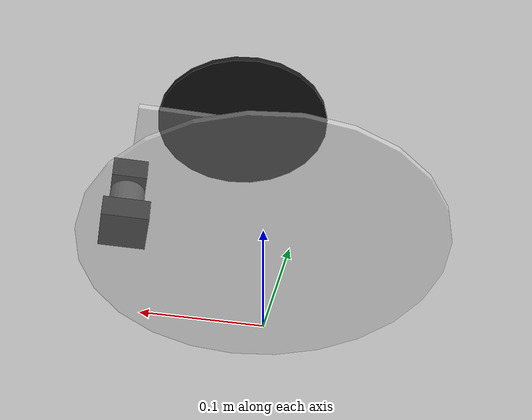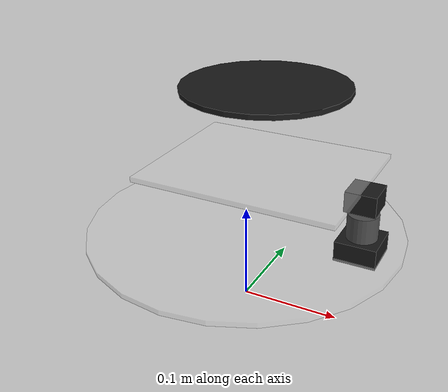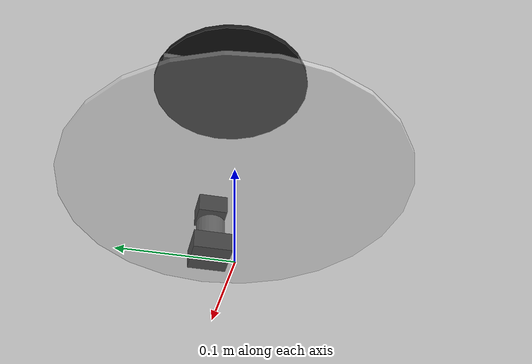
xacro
<?xml version="1.0"?>
<robot xmlns:xacro="http://www.ros.org/wiki/xacro" name="jeff_create3">

  <!-- ================= BASE REFERENCE ================= -->
  <!-- Anchored to the Create 3 base frame -->
  <link name="base_link"/>

  <!-- ================= LEVEL 1 (Payload Deck & Pi 5) ================= -->
  <link name="level1_deck">
    <visual>
      <geometry>
        <cylinder radius="0.16" length="0.005"/>
      </geometry>
      <material name="acrylic_clear">
        <color rgba="0.9 0.9 0.9 0.4"/>
      </material>
    </visual>
    <collision>
      <geometry>
        <cylinder radius="0.16" length="0.005"/>
      </geometry>
    </collision>
  </link>

  <joint name="base_to_level1" type="fixed">
    <parent link="base_link"/>
    <child link="level1_deck"/>
    <origin xyz="0 0 0.08" rpy="0 0 3.14159"/>
  </joint>

  <!-- ================= PAN / TILT GIMBAL (Level 1 Front) ================= -->
  <link name="pan_base_link">
    <visual>
      <geometry>
        <box size="0.04 0.04 0.02"/>
      </geometry>
      <material name="black">
        <color rgba="0.1 0.1 0.1 1.0"/>
      </material>
    </visual>
  </link>

  <joint name="level1_to_pan_base" type="fixed">
    <parent link="level1_deck"/>
    <child link="pan_base_link"/>
    <origin xyz="-0.12 0.0 0.01" rpy="0 0 0"/>
  </joint>

  <!-- Pan Joint (Yaw - rotates around Z-axis) -->
  <link name="pan_link">
    <visual>
      <geometry>
        <cylinder radius="0.015" length="0.03"/>
      </geometry>
      <material name="grey">
        <color rgba="0.3 0.3 0.3 1.0"/>
      </material>
    </visual>
  </link>

  <joint name="pan_joint" type="revolute">
    <parent link="pan_base_link"/>
    <child link="pan_link"/>
    <origin xyz="0 0 0.02" rpy="0 0 0"/>
    <axis xyz="0 0 1"/>
    <limit lower="-1.5708" upper="1.5708" effort="1.0" velocity="2.0"/>
  </joint>

  <!-- Tilt Joint (Pitch - rotates around Y-axis) -->
  <link name="tilt_link">
    <visual>
      <geometry>
        <box size="0.03 0.03 0.02"/>
      </geometry>
      <material name="black"/>
    </visual>
  </link>

  <joint name="tilt_joint" type="revolute">
    <parent link="pan_link"/>
    <child link="tilt_link"/>
    <origin xyz="0 0 0.03" rpy="0 0 0"/>
    <axis xyz="0 1 0"/>
    <limit lower="-0.7854" upper="0.7854" effort="1.0" velocity="2.0"/>
  </joint>

  <!-- RealSense D435i Mount Anchor -->
  <link name="camera_link"/>

  <joint name="tilt_to_camera" type="fixed">
    <parent link="tilt_link"/>
    <child link="camera_link"/>
    <origin xyz="0.015 0.0 0.01" rpy="0 0 3.14159"/>
  </joint>

  <!-- ================= LEVEL 2 (Battery & Power Management) ================= -->
  <link name="level2_deck">
    <visual>
      <geometry>
        <box size="0.20 0.16 0.005"/>
      </geometry>
      <material name="acrylic_clear"/>
    </visual>
  </link>

  <joint name="level1_to_level2" type="fixed">
    <parent link="level1_deck"/>
    <child link="level2_deck"/>
    <origin xyz="-0.02 0 0.07" rpy="0 0 0"/>
  </joint>

  <!-- ================= LEVEL 3 / TOP (RPLiDAR C1 Apex Mount) ================= -->
  <link name="level3_deck">
    <visual>
      <geometry>
        <cylinder radius="0.08" length="0.005"/>
      </geometry>
      <material name="black"/>
    </visual>
  </link>

  <joint name="level2_to_level3" type="fixed">
    <parent link="level2_deck"/>
    <child link="level3_deck"/>
    <origin xyz="0 0 0.08" rpy="0 0 0"/>
  </joint>

  <!-- RPLiDAR Optical Center Frame -->
  <link name="laser"/>

  <joint name="level3_to_laser" type="fixed">
    <parent link="level3_deck"/>
    <child link="laser"/>
    <origin xyz="0 0 0.03" rpy="0 0 0"/>
  </joint>

</robot>
